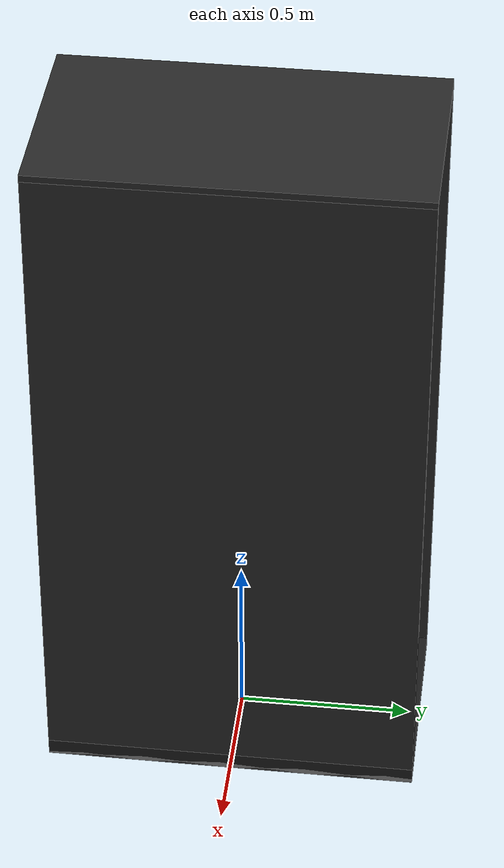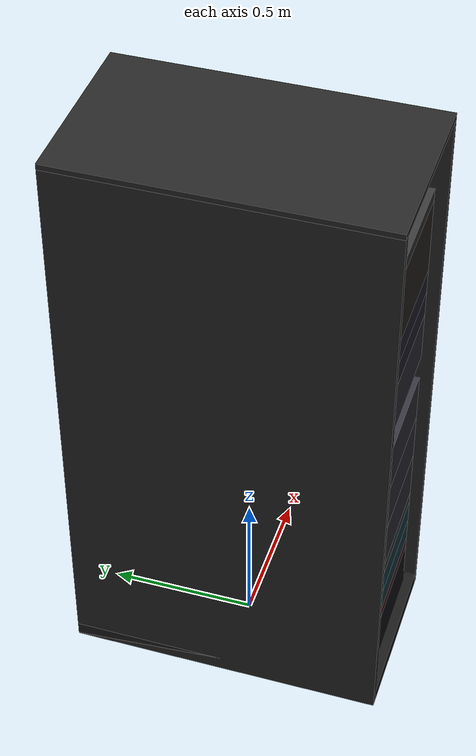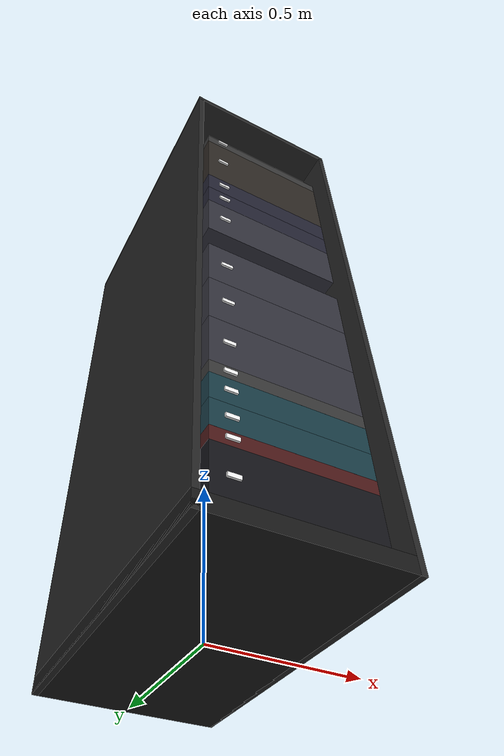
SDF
<?xml version="1.0"?>
<sdf version="1.9">
  <model name="server_rack_7">
    <static>true</static>

    <!-- ===================== FRAME ===================== -->

    <link name="frame_side_left">
      <pose>-0.29 0 1.0 0 0 0</pose>
      <collision name="collision">
        <geometry><box><size>0.02 1.07 2.0</size></box></geometry>
      </collision>
      <visual name="visual">
        <geometry><box><size>0.02 1.07 2.0</size></box></geometry>
        <material>
          <ambient>0.15 0.15 0.15 1</ambient>
          <diffuse>0.15 0.15 0.15 1</diffuse>
        </material>
      </visual>
    </link>

    <link name="frame_side_right">
      <pose>0.29 0 1.0 0 0 0</pose>
      <collision name="collision">
        <geometry><box><size>0.02 1.07 2.0</size></box></geometry>
      </collision>
      <visual name="visual">
        <geometry><box><size>0.02 1.07 2.0</size></box></geometry>
        <material>
          <ambient>0.15 0.15 0.15 1</ambient>
          <diffuse>0.15 0.15 0.15 1</diffuse>
        </material>
      </visual>
    </link>

    <link name="frame_top">
      <pose>0 0 2.01 0 0 0</pose>
      <collision name="collision">
        <geometry><box><size>0.60 1.07 0.02</size></box></geometry>
      </collision>
      <visual name="visual">
        <geometry><box><size>0.60 1.07 0.02</size></box></geometry>
        <material>
          <ambient>0.15 0.15 0.15 1</ambient>
          <diffuse>0.15 0.15 0.15 1</diffuse>
        </material>
      </visual>
    </link>

    <link name="frame_plinth">
      <pose>0 0 0.025 0 0 0</pose>
      <collision name="collision">
        <geometry><box><size>0.60 1.07 0.05</size></box></geometry>
      </collision>
      <visual name="visual">
        <geometry><box><size>0.60 1.07 0.05</size></box></geometry>
        <material>
          <ambient>0.10 0.10 0.10 1</ambient>
          <diffuse>0.10 0.10 0.10 1</diffuse>
        </material>
      </visual>
    </link>

    <!-- ===================== EQUIPMENT ===================== -->

    <!-- 4RU UPS, U1-U4 -->
    <link name="ups">
      <pose>0 -0.15 0.1389 0 0 0</pose>
      <collision name="collision">
        <geometry><box><size>0.483 0.70 0.1778</size></box></geometry>
      </collision>
      <visual name="visual">
        <geometry><box><size>0.483 0.70 0.1778</size></box></geometry>
        <material>
          <ambient>0.08 0.08 0.10 1</ambient>
          <diffuse>0.08 0.08 0.10 1</diffuse>
        </material>
      </visual>
    </link>

    <!-- 1RU PDU, U5 -->
    <link name="pdu">
      <pose>0 -0.29 0.2500 0 0 0</pose>
      <collision name="collision">
        <geometry><box><size>0.483 0.42 0.0444</size></box></geometry>
      </collision>
      <visual name="visual">
        <geometry><box><size>0.483 0.42 0.0444</size></box></geometry>
        <material>
          <ambient>0.30 0.10 0.10 1</ambient>
          <diffuse>0.30 0.10 0.10 1</diffuse>
        </material>
      </visual>
    </link>

    <!-- 2RU SAN switch 1, U6-U7 -->
    <link name="san_switch_1">
      <pose>0 -0.29 0.3167 0 0 0</pose>
      <collision name="collision">
        <geometry><box><size>0.483 0.42 0.0889</size></box></geometry>
      </collision>
      <visual name="visual">
        <geometry><box><size>0.483 0.42 0.0889</size></box></geometry>
        <material>
          <ambient>0.10 0.24 0.28 1</ambient>
          <diffuse>0.10 0.24 0.28 1</diffuse>
        </material>
      </visual>
    </link>

    <!-- 2RU SAN switch 2 (redundant), U8-U9 -->
    <link name="san_switch_2">
      <pose>0 -0.29 0.4056 0 0 0</pose>
      <collision name="collision">
        <geometry><box><size>0.483 0.42 0.0889</size></box></geometry>
      </collision>
      <visual name="visual">
        <geometry><box><size>0.483 0.42 0.0889</size></box></geometry>
        <material>
          <ambient>0.10 0.24 0.28 1</ambient>
          <diffuse>0.10 0.24 0.28 1</diffuse>
        </material>
      </visual>
    </link>

    <!-- 1RU cable manager 1, U10 -->
    <link name="cable_manager_1">
      <pose>0 -0.425 0.4723 0 0 0</pose>
      <collision name="collision">
        <geometry><box><size>0.483 0.15 0.0444</size></box></geometry>
      </collision>
      <visual name="visual">
        <geometry><box><size>0.483 0.15 0.0444</size></box></geometry>
        <material>
          <ambient>0.22 0.22 0.22 1</ambient>
          <diffuse>0.22 0.22 0.22 1</diffuse>
        </material>
      </visual>
    </link>

    <!-- 4RU disk shelf 1, U11-U14 -->
    <link name="disk_shelf_1">
      <pose>0 -0.125 0.5834 0 0 0</pose>
      <collision name="collision">
        <geometry><box><size>0.483 0.75 0.1778</size></box></geometry>
      </collision>
      <visual name="visual">
        <geometry><box><size>0.483 0.75 0.1778</size></box></geometry>
        <material>
          <ambient>0.20 0.20 0.24 1</ambient>
          <diffuse>0.20 0.20 0.24 1</diffuse>
        </material>
      </visual>
    </link>

    <!-- 4RU disk shelf 2, U15-U18 -->
    <link name="disk_shelf_2">
      <pose>0 -0.125 0.7612 0 0 0</pose>
      <collision name="collision">
        <geometry><box><size>0.483 0.75 0.1778</size></box></geometry>
      </collision>
      <visual name="visual">
        <geometry><box><size>0.483 0.75 0.1778</size></box></geometry>
        <material>
          <ambient>0.20 0.20 0.24 1</ambient>
          <diffuse>0.20 0.20 0.24 1</diffuse>
        </material>
      </visual>
    </link>

    <!-- 4RU disk shelf 3, U19-U22 -->
    <link name="disk_shelf_3">
      <pose>0 -0.125 0.9390 0 0 0</pose>
      <collision name="collision">
        <geometry><box><size>0.483 0.75 0.1778</size></box></geometry>
      </collision>
      <visual name="visual">
        <geometry><box><size>0.483 0.75 0.1778</size></box></geometry>
        <material>
          <ambient>0.20 0.20 0.24 1</ambient>
          <diffuse>0.20 0.20 0.24 1</diffuse>
        </material>
      </visual>
    </link>

    <!-- U23-U24 intentionally EMPTY (decommissioned shelf) -->

    <!-- 4RU disk shelf 4, U25-U28 -->
    <link name="disk_shelf_4">
      <pose>0 -0.125 1.2057 0 0 0</pose>
      <collision name="collision">
        <geometry><box><size>0.483 0.75 0.1778</size></box></geometry>
      </collision>
      <visual name="visual">
        <geometry><box><size>0.483 0.75 0.1778</size></box></geometry>
        <material>
          <ambient>0.20 0.20 0.24 1</ambient>
          <diffuse>0.20 0.20 0.24 1</diffuse>
        </material>
      </visual>
    </link>

    <!-- 2RU storage controller 1, U29-U30 -->
    <link name="storage_controller_1">
      <pose>0 -0.15 1.3391 0 0 0</pose>
      <collision name="collision">
        <geometry><box><size>0.483 0.70 0.0889</size></box></geometry>
      </collision>
      <visual name="visual">
        <geometry><box><size>0.483 0.70 0.0889</size></box></geometry>
        <material>
          <ambient>0.14 0.14 0.20 1</ambient>
          <diffuse>0.14 0.14 0.20 1</diffuse>
        </material>
      </visual>
    </link>

    <!-- 2RU storage controller 2, U31-U32 -->
    <link name="storage_controller_2">
      <pose>0 -0.15 1.4280 0 0 0</pose>
      <collision name="collision">
        <geometry><box><size>0.483 0.70 0.0889</size></box></geometry>
      </collision>
      <visual name="visual">
        <geometry><box><size>0.483 0.70 0.0889</size></box></geometry>
        <material>
          <ambient>0.14 0.14 0.20 1</ambient>
          <diffuse>0.14 0.14 0.20 1</diffuse>
        </material>
      </visual>
    </link>

    <!-- 6RU tape library, U33-U38 -->
    <link name="tape_library">
      <pose>0 -0.10 1.6058 0 0 0</pose>
      <collision name="collision">
        <geometry><box><size>0.483 0.80 0.2667</size></box></geometry>
      </collision>
      <visual name="visual">
        <geometry><box><size>0.483 0.80 0.2667</size></box></geometry>
        <material>
          <ambient>0.18 0.16 0.14 1</ambient>
          <diffuse>0.18 0.16 0.14 1</diffuse>
        </material>
      </visual>
    </link>

    <!-- 1RU cable manager 2, U39 -->
    <link name="cable_manager_2">
      <pose>0 -0.425 1.7613 0 0 0</pose>
      <collision name="collision">
        <geometry><box><size>0.483 0.15 0.0444</size></box></geometry>
      </collision>
      <visual name="visual">
        <geometry><box><size>0.483 0.15 0.0444</size></box></geometry>
        <material>
          <ambient>0.22 0.22 0.22 1</ambient>
          <diffuse>0.22 0.22 0.22 1</diffuse>
        </material>
      </visual>
    </link>

    <!-- U40-U42 intentionally EMPTY (reserved) -->

    <!-- ===================== RFID TAGS ===================== -->

    <!-- ups, U1-4 -->
    <model name="barcode_label_031FB72">
      <static>true</static>
      <pose>-0.18 -0.5042 0.1389 0 0 0</pose>
      <link name="label_link">
        <visual name="substrate">
          <geometry><box><size>0.03810 0.00635 0.01270</size></box></geometry>
          <material>
            <ambient>0.9 0.9 0.9 1</ambient>
            <diffuse>0.9 0.9 0.9 1</diffuse>
          </material>
        </visual>
        <visual name="print">
          <pose>0 -0.00327 0 1.5708 0 0</pose>
          <geometry><box><size>0.03810 0.01270 0.0002</size></box></geometry>
          <material>
            <ambient>1 1 1 1</ambient>
            <diffuse>1 1 1 1</diffuse>
            <pbr><metal>
              <albedo_map>model://barcode_labels/materials/textures/031FB72.png</albedo_map>
              <metalness>0.0</metalness>
              <roughness>1.0</roughness>
            </metal></pbr>
          </material>
        </visual>
      </link>
    </model>

    <!-- pdu, U5-5 -->
    <model name="barcode_label_031FB73">
      <static>true</static>
      <pose>-0.18 -0.5042 0.2500 0 0 0</pose>
      <link name="label_link">
        <visual name="substrate">
          <geometry><box><size>0.03810 0.00635 0.01270</size></box></geometry>
          <material>
            <ambient>0.9 0.9 0.9 1</ambient>
            <diffuse>0.9 0.9 0.9 1</diffuse>
          </material>
        </visual>
        <visual name="print">
          <pose>0 -0.00327 0 1.5708 0 0</pose>
          <geometry><box><size>0.03810 0.01270 0.0002</size></box></geometry>
          <material>
            <ambient>1 1 1 1</ambient>
            <diffuse>1 1 1 1</diffuse>
            <pbr><metal>
              <albedo_map>model://barcode_labels/materials/textures/031FB73.png</albedo_map>
              <metalness>0.0</metalness>
              <roughness>1.0</roughness>
            </metal></pbr>
          </material>
        </visual>
      </link>
    </model>

    <!-- san_switch, U6-7 -->
    <model name="barcode_label_031FB74">
      <static>true</static>
      <pose>-0.18 -0.5042 0.3167 0 0 0</pose>
      <link name="label_link">
        <visual name="substrate">
          <geometry><box><size>0.03810 0.00635 0.01270</size></box></geometry>
          <material>
            <ambient>0.9 0.9 0.9 1</ambient>
            <diffuse>0.9 0.9 0.9 1</diffuse>
          </material>
        </visual>
        <visual name="print">
          <pose>0 -0.00327 0 1.5708 0 0</pose>
          <geometry><box><size>0.03810 0.01270 0.0002</size></box></geometry>
          <material>
            <ambient>1 1 1 1</ambient>
            <diffuse>1 1 1 1</diffuse>
            <pbr><metal>
              <albedo_map>model://barcode_labels/materials/textures/031FB74.png</albedo_map>
              <metalness>0.0</metalness>
              <roughness>1.0</roughness>
            </metal></pbr>
          </material>
        </visual>
      </link>
    </model>

    <!-- san_switch, U8-9 -->
    <model name="barcode_label_031FB75">
      <static>true</static>
      <pose>-0.18 -0.5042 0.4056 0 0 0</pose>
      <link name="label_link">
        <visual name="substrate">
          <geometry><box><size>0.03810 0.00635 0.01270</size></box></geometry>
          <material>
            <ambient>0.9 0.9 0.9 1</ambient>
            <diffuse>0.9 0.9 0.9 1</diffuse>
          </material>
        </visual>
        <visual name="print">
          <pose>0 -0.00327 0 1.5708 0 0</pose>
          <geometry><box><size>0.03810 0.01270 0.0002</size></box></geometry>
          <material>
            <ambient>1 1 1 1</ambient>
            <diffuse>1 1 1 1</diffuse>
            <pbr><metal>
              <albedo_map>model://barcode_labels/materials/textures/031FB75.png</albedo_map>
              <metalness>0.0</metalness>
              <roughness>1.0</roughness>
            </metal></pbr>
          </material>
        </visual>
      </link>
    </model>

    <!-- cable_manager, U10-10 -->
    <model name="barcode_label_031FB76">
      <static>true</static>
      <pose>-0.18 -0.5042 0.4723 0 0 0</pose>
      <link name="label_link">
        <visual name="substrate">
          <geometry><box><size>0.03810 0.00635 0.01270</size></box></geometry>
          <material>
            <ambient>0.9 0.9 0.9 1</ambient>
            <diffuse>0.9 0.9 0.9 1</diffuse>
          </material>
        </visual>
        <visual name="print">
          <pose>0 -0.00327 0 1.5708 0 0</pose>
          <geometry><box><size>0.03810 0.01270 0.0002</size></box></geometry>
          <material>
            <ambient>1 1 1 1</ambient>
            <diffuse>1 1 1 1</diffuse>
            <pbr><metal>
              <albedo_map>model://barcode_labels/materials/textures/031FB76.png</albedo_map>
              <metalness>0.0</metalness>
              <roughness>1.0</roughness>
            </metal></pbr>
          </material>
        </visual>
      </link>
    </model>

    <!-- disk_shelf, U11-14 -->
    <model name="barcode_label_031FB77">
      <static>true</static>
      <pose>-0.18 -0.5042 0.5834 0 0 0</pose>
      <link name="label_link">
        <visual name="substrate">
          <geometry><box><size>0.03810 0.00635 0.01270</size></box></geometry>
          <material>
            <ambient>0.9 0.9 0.9 1</ambient>
            <diffuse>0.9 0.9 0.9 1</diffuse>
          </material>
        </visual>
        <visual name="print">
          <pose>0 -0.00327 0 1.5708 0 0</pose>
          <geometry><box><size>0.03810 0.01270 0.0002</size></box></geometry>
          <material>
            <ambient>1 1 1 1</ambient>
            <diffuse>1 1 1 1</diffuse>
            <pbr><metal>
              <albedo_map>model://barcode_labels/materials/textures/031FB77.png</albedo_map>
              <metalness>0.0</metalness>
              <roughness>1.0</roughness>
            </metal></pbr>
          </material>
        </visual>
      </link>
    </model>

    <!-- disk_shelf, U15-18 -->
    <model name="barcode_label_031FB78">
      <static>true</static>
      <pose>-0.18 -0.5042 0.7612 0 0 0</pose>
      <link name="label_link">
        <visual name="substrate">
          <geometry><box><size>0.03810 0.00635 0.01270</size></box></geometry>
          <material>
            <ambient>0.9 0.9 0.9 1</ambient>
            <diffuse>0.9 0.9 0.9 1</diffuse>
          </material>
        </visual>
        <visual name="print">
          <pose>0 -0.00327 0 1.5708 0 0</pose>
          <geometry><box><size>0.03810 0.01270 0.0002</size></box></geometry>
          <material>
            <ambient>1 1 1 1</ambient>
            <diffuse>1 1 1 1</diffuse>
            <pbr><metal>
              <albedo_map>model://barcode_labels/materials/textures/031FB78.png</albedo_map>
              <metalness>0.0</metalness>
              <roughness>1.0</roughness>
            </metal></pbr>
          </material>
        </visual>
      </link>
    </model>

    <!-- disk_shelf, U19-22 -->
    <model name="barcode_label_031FB79">
      <static>true</static>
      <pose>-0.18 -0.5042 0.9390 0 0 0</pose>
      <link name="label_link">
        <visual name="substrate">
          <geometry><box><size>0.03810 0.00635 0.01270</size></box></geometry>
          <material>
            <ambient>0.9 0.9 0.9 1</ambient>
            <diffuse>0.9 0.9 0.9 1</diffuse>
          </material>
        </visual>
        <visual name="print">
          <pose>0 -0.00327 0 1.5708 0 0</pose>
          <geometry><box><size>0.03810 0.01270 0.0002</size></box></geometry>
          <material>
            <ambient>1 1 1 1</ambient>
            <diffuse>1 1 1 1</diffuse>
            <pbr><metal>
              <albedo_map>model://barcode_labels/materials/textures/031FB79.png</albedo_map>
              <metalness>0.0</metalness>
              <roughness>1.0</roughness>
            </metal></pbr>
          </material>
        </visual>
      </link>
    </model>

    <!-- disk_shelf, U25-28 -->
    <model name="barcode_label_031FB7A">
      <static>true</static>
      <pose>-0.18 -0.5042 1.2057 0 0 0</pose>
      <link name="label_link">
        <visual name="substrate">
          <geometry><box><size>0.03810 0.00635 0.01270</size></box></geometry>
          <material>
            <ambient>0.9 0.9 0.9 1</ambient>
            <diffuse>0.9 0.9 0.9 1</diffuse>
          </material>
        </visual>
        <visual name="print">
          <pose>0 -0.00327 0 1.5708 0 0</pose>
          <geometry><box><size>0.03810 0.01270 0.0002</size></box></geometry>
          <material>
            <ambient>1 1 1 1</ambient>
            <diffuse>1 1 1 1</diffuse>
            <pbr><metal>
              <albedo_map>model://barcode_labels/materials/textures/031FB7A.png</albedo_map>
              <metalness>0.0</metalness>
              <roughness>1.0</roughness>
            </metal></pbr>
          </material>
        </visual>
      </link>
    </model>

    <!-- storage_controller, U29-30 -->
    <model name="barcode_label_031FB7B">
      <static>true</static>
      <pose>-0.18 -0.5042 1.3391 0 0 0</pose>
      <link name="label_link">
        <visual name="substrate">
          <geometry><box><size>0.03810 0.00635 0.01270</size></box></geometry>
          <material>
            <ambient>0.9 0.9 0.9 1</ambient>
            <diffuse>0.9 0.9 0.9 1</diffuse>
          </material>
        </visual>
        <visual name="print">
          <pose>0 -0.00327 0 1.5708 0 0</pose>
          <geometry><box><size>0.03810 0.01270 0.0002</size></box></geometry>
          <material>
            <ambient>1 1 1 1</ambient>
            <diffuse>1 1 1 1</diffuse>
            <pbr><metal>
              <albedo_map>model://barcode_labels/materials/textures/031FB7B.png</albedo_map>
              <metalness>0.0</metalness>
              <roughness>1.0</roughness>
            </metal></pbr>
          </material>
        </visual>
      </link>
    </model>

    <!-- storage_controller, U31-32 -->
    <model name="barcode_label_031FB7C">
      <static>true</static>
      <pose>-0.18 -0.5042 1.4280 0 0 0</pose>
      <link name="label_link">
        <visual name="substrate">
          <geometry><box><size>0.03810 0.00635 0.01270</size></box></geometry>
          <material>
            <ambient>0.9 0.9 0.9 1</ambient>
            <diffuse>0.9 0.9 0.9 1</diffuse>
          </material>
        </visual>
        <visual name="print">
          <pose>0 -0.00327 0 1.5708 0 0</pose>
          <geometry><box><size>0.03810 0.01270 0.0002</size></box></geometry>
          <material>
            <ambient>1 1 1 1</ambient>
            <diffuse>1 1 1 1</diffuse>
            <pbr><metal>
              <albedo_map>model://barcode_labels/materials/textures/031FB7C.png</albedo_map>
              <metalness>0.0</metalness>
              <roughness>1.0</roughness>
            </metal></pbr>
          </material>
        </visual>
      </link>
    </model>

    <!-- tape_library, U33-38 -->
    <model name="barcode_label_031FB7D">
      <static>true</static>
      <pose>-0.18 -0.5042 1.6058 0 0 0</pose>
      <link name="label_link">
        <visual name="substrate">
          <geometry><box><size>0.03810 0.00635 0.01270</size></box></geometry>
          <material>
            <ambient>0.9 0.9 0.9 1</ambient>
            <diffuse>0.9 0.9 0.9 1</diffuse>
          </material>
        </visual>
        <visual name="print">
          <pose>0 -0.00327 0 1.5708 0 0</pose>
          <geometry><box><size>0.03810 0.01270 0.0002</size></box></geometry>
          <material>
            <ambient>1 1 1 1</ambient>
            <diffuse>1 1 1 1</diffuse>
            <pbr><metal>
              <albedo_map>model://barcode_labels/materials/textures/031FB7D.png</albedo_map>
              <metalness>0.0</metalness>
              <roughness>1.0</roughness>
            </metal></pbr>
          </material>
        </visual>
      </link>
    </model>

    <!-- cable_manager, U39-39 -->
    <model name="barcode_label_031FB7E">
      <static>true</static>
      <pose>-0.18 -0.5042 1.7613 0 0 0</pose>
      <link name="label_link">
        <visual name="substrate">
          <geometry><box><size>0.03810 0.00635 0.01270</size></box></geometry>
          <material>
            <ambient>0.9 0.9 0.9 1</ambient>
            <diffuse>0.9 0.9 0.9 1</diffuse>
          </material>
        </visual>
        <visual name="print">
          <pose>0 -0.00327 0 1.5708 0 0</pose>
          <geometry><box><size>0.03810 0.01270 0.0002</size></box></geometry>
          <material>
            <ambient>1 1 1 1</ambient>
            <diffuse>1 1 1 1</diffuse>
            <pbr><metal>
              <albedo_map>model://barcode_labels/materials/textures/031FB7E.png</albedo_map>
              <metalness>0.0</metalness>
              <roughness>1.0</roughness>
            </metal></pbr>
          </material>
        </visual>
      </link>
    </model>

  </model>
</sdf>
